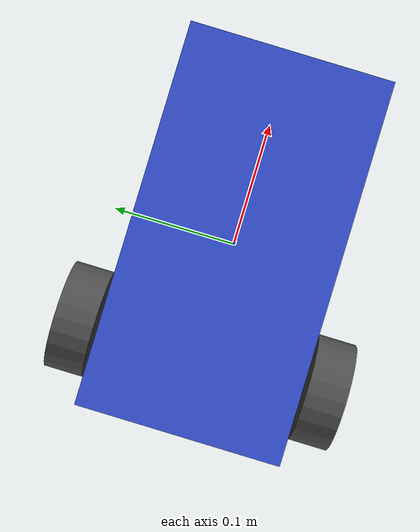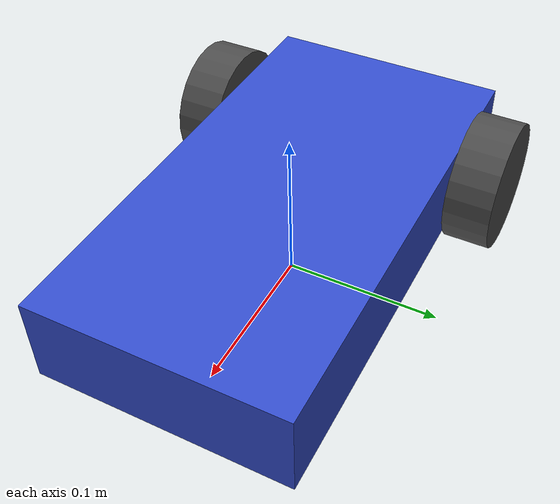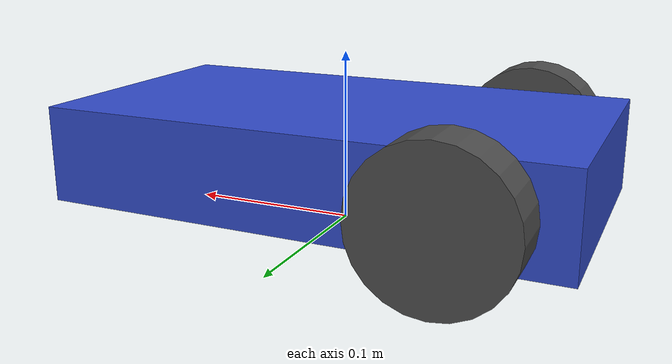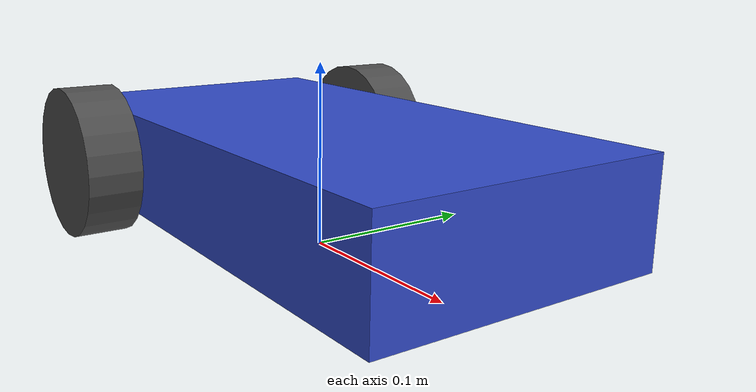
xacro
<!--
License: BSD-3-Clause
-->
<?xml version="1.0"?>
<robot xmlns:xacro="http://www.ros.org/wiki/xacro" name="evarobot">

  <!-- PROPERTIES -->

  <!-- Robot dimensions (meters) -->
  <xacro:property name="base_length" value="0.30" />
  <xacro:property name="base_width" value="0.16" />  <!-- Reduced from 0.20 so wheels stick out -->
  <xacro:property name="base_height" value="0.056" />  <!-- Reduced by 30% from 0.08 to show wheels better -->
  <xacro:property name="base_mass" value="2.0" />

  <!-- Wheel dimensions (measured from evarobot_controllers.yaml) -->
  <xacro:property name="wheel_radius" value="0.042" />
  <xacro:property name="wheel_width" value="0.03" />
  <xacro:property name="wheel_mass" value="0.1" />
  <xacro:property name="wheel_separation" value="0.194" />

  <!-- Wheel position offset (30% of base_length backwards from center) -->
  <xacro:property name="wheel_offset_x" value="${-0.3 * base_length}" />

  <!-- Caster wheel dimensions -->
  <xacro:property name="caster_radius" value="0.015" />
  <xacro:property name="caster_mass" value="0.05" />
  <xacro:property name="caster_offset_x" value="0.12" />

  <!-- Colors -->
  <material name="blue">
    <color rgba="0.2 0.3 0.8 1.0"/>
  </material>

  <material name="dark_grey">
    <color rgba="0.3 0.3 0.3 1.0"/>
  </material>

  <material name="light_grey">
    <color rgba="0.6 0.6 0.6 1.0"/>
  </material>

  <!-- MACROS -->

  <!-- Inertia macros for standard shapes -->
  <xacro:macro name="box_inertia" params="mass x y z">
    <inertia ixx="${mass * (y*y + z*z) / 12.0}" ixy="0.0" ixz="0.0"
             iyy="${mass * (x*x + z*z) / 12.0}" iyz="0.0"
             izz="${mass * (x*x + y*y) / 12.0}"/>
  </xacro:macro>

  <xacro:macro name="cylinder_inertia" params="mass r h">
    <inertia ixx="${mass * (3*r*r + h*h) / 12.0}" ixy="0.0" ixz="0.0"
             iyy="${mass * (3*r*r + h*h) / 12.0}" iyz="0.0"
             izz="${mass * r*r / 2.0}"/>
  </xacro:macro>

  <xacro:macro name="sphere_inertia" params="mass r">
    <inertia ixx="${2.0 * mass * r * r / 5.0}" ixy="0.0" ixz="0.0"
             iyy="${2.0 * mass * r * r / 5.0}" iyz="0.0"
             izz="${2.0 * mass * r * r / 5.0}"/>
  </xacro:macro>

  <!-- BASE LINK -->

  <!-- Base footprint (ground projection) -->
  <link name="base_footprint"/>

  <!-- Base link (chassis) -->
  <link name="base_link">
    <visual>
      <origin xyz="0 0 0" rpy="0 0 0"/>
      <geometry>
        <box size="${base_length} ${base_width} ${base_height}"/>
      </geometry>
      <material name="blue"/>
    </visual>

    <collision>
      <origin xyz="0 0 0" rpy="0 0 0"/>
      <geometry>
        <box size="${base_length} ${base_width} ${base_height}"/>
      </geometry>
    </collision>

    <inertial>
      <origin xyz="0 0 0" rpy="0 0 0"/>
      <mass value="${base_mass}"/>
      <xacro:box_inertia mass="${base_mass}" x="${base_length}" y="${base_width}" z="${base_height}"/>
    </inertial>
  </link>

  <!-- Joint connecting base_footprint to base_link -->
  <joint name="base_footprint_joint" type="fixed">
    <parent link="base_footprint"/>
    <child link="base_link"/>
    <origin xyz="0 0 ${wheel_radius}" rpy="0 0 0"/>
  </joint>

  <!-- WHEELS -->

  <!-- Wheel macro -->
  <xacro:macro name="wheel" params="prefix reflect">

    <link name="${prefix}_wheel_link">
      <visual>
        <origin xyz="0 0 0" rpy="${pi/2} 0 0"/>
        <geometry>
          <cylinder radius="${wheel_radius}" length="${wheel_width}"/>
        </geometry>
        <material name="dark_grey"/>
      </visual>

      <collision>
        <origin xyz="0 0 0" rpy="${pi/2} 0 0"/>
        <geometry>
          <cylinder radius="${wheel_radius}" length="${wheel_width}"/>
        </geometry>
      </collision>

      <inertial>
        <origin xyz="0 0 0" rpy="${pi/2} 0 0"/>
        <mass value="${wheel_mass}"/>
        <xacro:cylinder_inertia mass="${wheel_mass}" r="${wheel_radius}" h="${wheel_width}"/>
      </inertial>
    </link>

    <joint name="${prefix}_wheel_joint" type="continuous">
      <parent link="base_link"/>
      <child link="${prefix}_wheel_link"/>
      <origin xyz="${wheel_offset_x} ${reflect * wheel_separation / 2.0} 0" rpy="0 0 0"/>
      <axis xyz="0 1 0"/>
    </joint>

  </xacro:macro>

  <!-- Instantiate left and right wheels -->
  <xacro:wheel prefix="left" reflect="1"/>
  <xacro:wheel prefix="right" reflect="-1"/>

  <!-- CASTER WHEEL -->

  <link name="caster_wheel_link">
    <visual>
      <origin xyz="0 0 0" rpy="0 0 0"/>
      <geometry>
        <sphere radius="${caster_radius}"/>
      </geometry>
      <material name="light_grey"/>
    </visual>

    <collision>
      <origin xyz="0 0 0" rpy="0 0 0"/>
      <geometry>
        <sphere radius="${caster_radius}"/>
      </geometry>
    </collision>

    <inertial>
      <origin xyz="0 0 0" rpy="0 0 0"/>
      <mass value="${caster_mass}"/>
      <xacro:sphere_inertia mass="${caster_mass}" r="${caster_radius}"/>
    </inertial>
  </link>

  <joint name="caster_wheel_joint" type="fixed">
    <parent link="base_link"/>
    <child link="caster_wheel_link"/>
    <origin xyz="${caster_offset_x} 0 ${-wheel_radius + caster_radius}" rpy="0 0 0"/>
  </joint>

  <!-- INCLUDES -->

  <!-- Include Gazebo-specific elements -->
  <xacro:include filename="$(find evarobot_description)/urdf/evarobot.gazebo.xacro"/>

  <!-- Include ROS2 Control configuration -->
  <xacro:include filename="$(find evarobot_description)/urdf/evarobot.ros2_control.xacro"/>

</robot>
